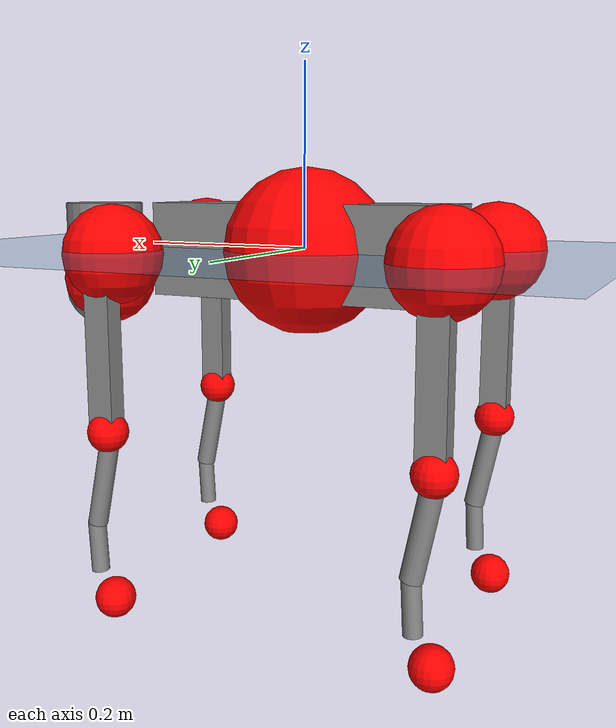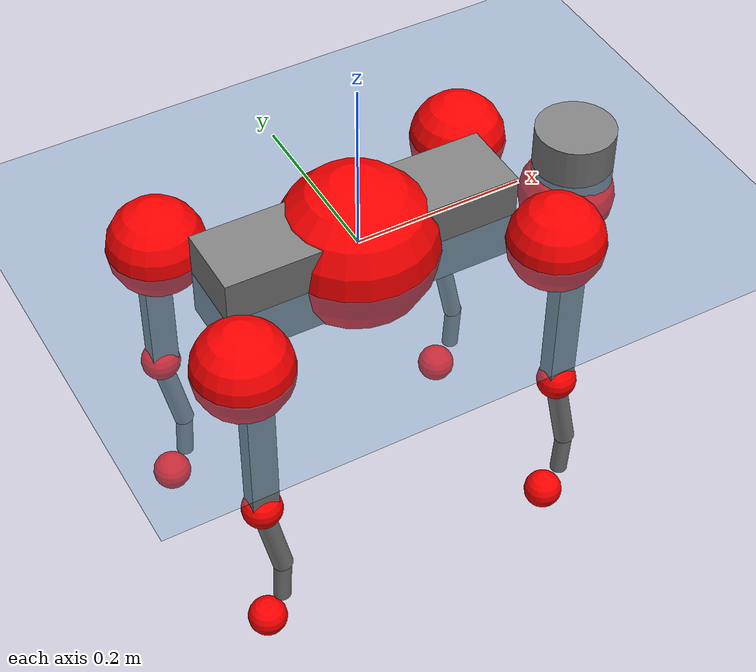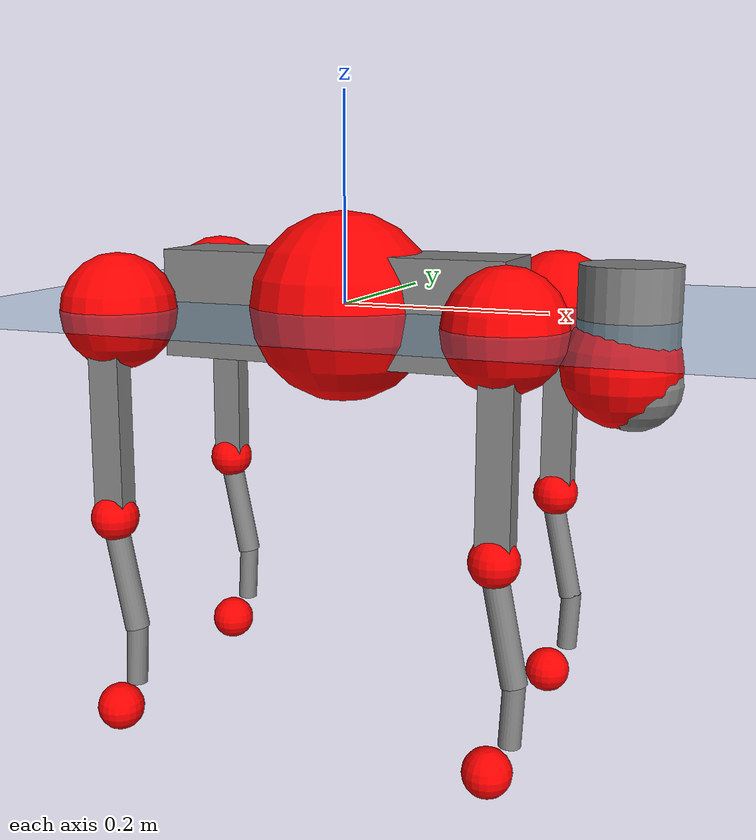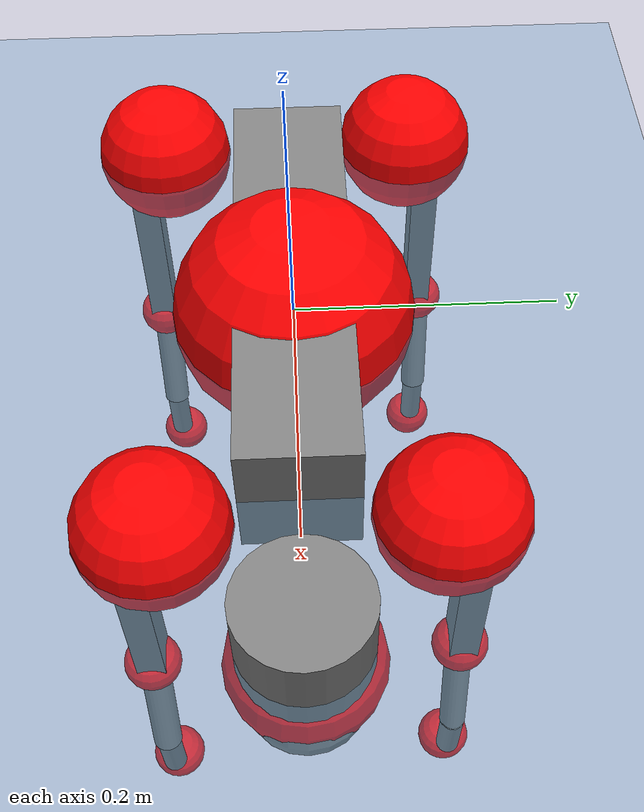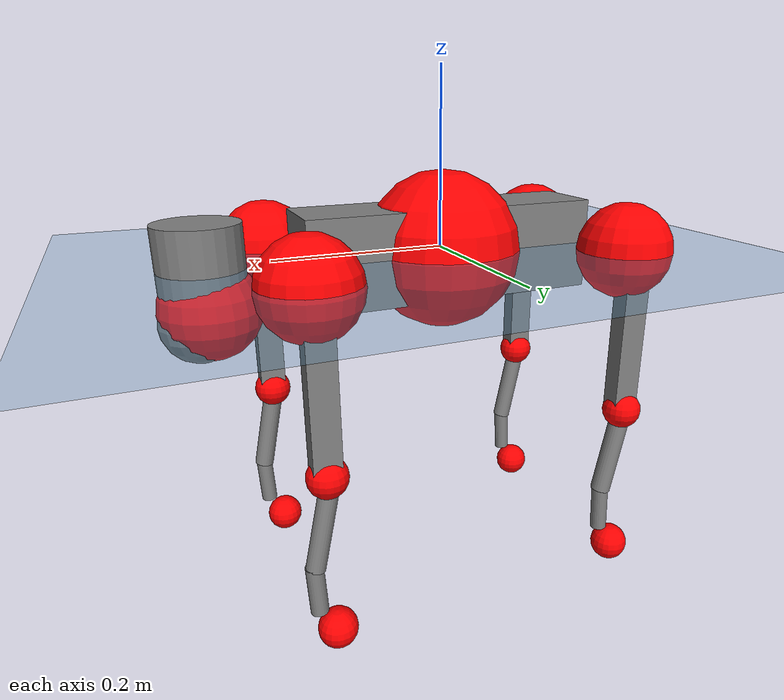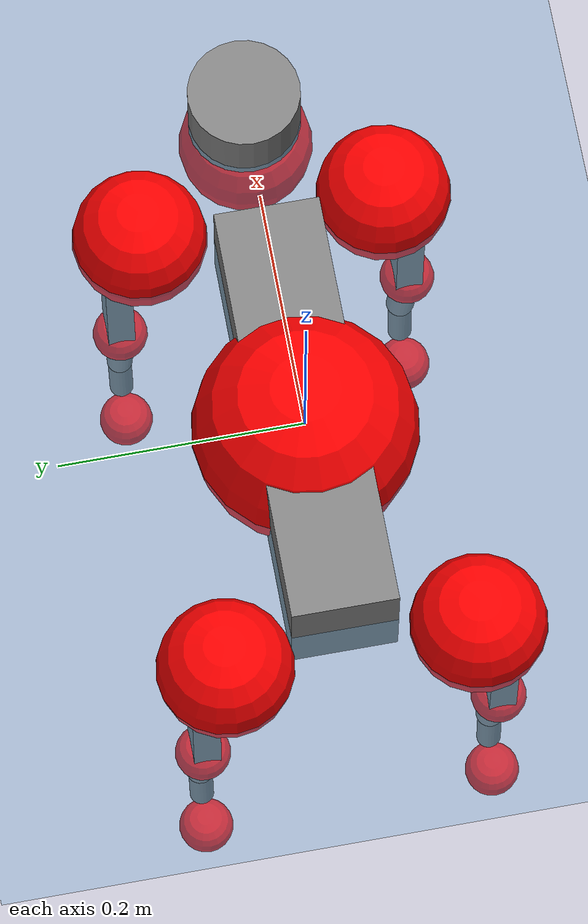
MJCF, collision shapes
<mujoco model="go2">
  <compiler angle="radian" assetdir="assets" balanceinertia="true" inertiafromgeom="false"/>

  <option timestep="0.005" density="1.2" viscosity="2e-05"/>

  <size nkey="1"/>

  <visual>
    <quality shadowsize="8192"/>
    <map shadowclip="0.5"/>
  </visual>

  <default>
    <default class="/">
      <geom contype="0" conaffinity="0" group="1" solref="-1000 -80"/>
      <site size="0.01 0.005 0.005" group="5"/>
      <general forcelimited="true" biastype="affine" gainprm="20" biasprm="0 -20 -0.5"/>
      <default class="go2">
        <joint armature="0.01" damping="0.01" frictionloss="0.2"/>
        <geom condim="1" margin="0.001"/>
        <default class="visual">
          <geom type="mesh" group="2"/>
        </default>
        <default class="collision">
          <geom group="3"/>
          <default class="foot">
            <geom size="0.022 0 0" condim="6" priority="1" friction="0.8 0.02 0.01" solimp="0.015 1 0.022"/>
          </default>
        </default>
        <default class="reward_collision_sphere">
          <geom group="5" rgba="1 0 0 1"/>
        </default>
      </default>
    </default>
  </default>

  <asset>
    <texture type="skybox" colorspace="auto" name="//unnamed_texture_0" builtin="gradient" rgb1="0.95 0.95 0.95" rgb2="0.95 0.95 0.95" width="100" height="600"/>
    <texture type="2d" colorspace="auto" name="texplane" builtin="checker" rgb1="0.345 0.575 0.748" rgb2="0.345 0.575 0.748" markrgb="1 1 1" width="512" height="512"/>
    <material name="MatPlane" class="/" texture="texplane" texuniform="true" texrepeat="2 2" specular="0.9"/>
    <material name="metal" class="/" rgba="0.9 0.95 0.95 1"/>
    <material name="black" class="/" rgba="0 0 0 1"/>
    <material name="white" class="/"/>
    <material name="gray" class="/" rgba="0.671705 0.692426 0.77427 1"/>
    <mesh name="base_0" class="/" file="base_0.obj"/>
    <mesh name="base_1" class="/" file="base_1.obj"/>
    <mesh name="base_2" class="/" file="base_2.obj"/>
    <mesh name="base_3" class="/" file="base_3.obj"/>
    <mesh name="base_4" class="/" file="base_4.obj"/>
    <mesh name="hip_0" class="/" file="hip_0.obj"/>
    <mesh name="hip_1" class="/" file="hip_1.obj"/>
    <mesh name="thigh_0" class="/" file="thigh_0.obj"/>
    <mesh name="thigh_1" class="/" file="thigh_1.obj"/>
    <mesh name="thigh_mirror_0" class="/" file="thigh_mirror_0.obj"/>
    <mesh name="thigh_mirror_1" class="/" file="thigh_mirror_1.obj"/>
    <mesh name="calf_0" class="/" file="calf_0.obj"/>
    <mesh name="calf_1" class="/" file="calf_1.obj"/>
    <mesh name="calf_mirror_0" class="/" file="calf_mirror_0.obj"/>
    <mesh name="calf_mirror_1" class="/" file="calf_mirror_1.obj"/>
    <mesh name="foot" class="/" file="foot.obj"/>
  </asset>

  <worldbody>
    <geom name="floor" class="/" size="100 100 0.125" type="plane" group="0" material="MatPlane"/>
    <light name="toplight_shadow" class="/" pos="0 0 5" dir="0.0990148 0.0990148 -0.990148" type="directional" ambient="0.04 0.04 0.04" diffuse="0.55 0.55 0.55" specular="0.12 0.12 0.12"/>
    <light name="toplight_fill" class="/" pos="0 0 5" dir="0.0990148 0.0990148 -0.990148" type="directional" castshadow="false" ambient="0.04 0.04 0.04" diffuse="0.3 0.3 0.3" specular="0.08 0.08 0.08"/>
    <body name="trunk" childclass="go2" pos="-0.00205676 0.000444808 -0.00277687" quat="0.999999 -2.20584e-05 0.00119587 -0.000264911">
      <inertial pos="0.0174081 0.00235724 -0.00576124" quat="-0.000386202 0.715986 -0.00742271 0.698075" mass="5.42604" diaginertia="0.0894193 0.0501345 0.0160266"/>
      <joint name="//unnamed_joint_0" type="free" armature="0" damping="0" frictionloss="0"/>
      <geom name="//unnamed_geom_1" class="visual" material="black" mesh="base_0"/>
      <geom name="//unnamed_geom_2" class="visual" material="black" mesh="base_1"/>
      <geom name="//unnamed_geom_3" class="visual" material="black" mesh="base_2"/>
      <geom name="//unnamed_geom_4" class="visual" material="white" mesh="base_3"/>
      <geom name="//unnamed_geom_5" class="visual" material="gray" mesh="base_4"/>
      <geom name="trunk_1" class="collision" size="0.172838 0.0429569 0.0523752" type="box"/>
      <geom name="trunk_2" class="collision" size="0.0459432 0.0413489" pos="0.274459 0 0.00918727" type="cylinder"/>
      <geom name="trunk_3" class="collision" size="0.0431866" pos="0.282163 0 -0.0551236"/>
      <geom name="//unnamed_geom_9" class="reward_collision_sphere" size="0.0918864"/>
      <geom name="//unnamed_geom_10" class="reward_collision_sphere" size="0.0551318" pos="0.269644 0 -0.0413427"/>
      <site name="imu" pos="-0.0111425 0.00650893 0.0259437" size="0.00918864"/>
      <camera name="track" pos="0 -1.7497 0" quat="0.707107 0.707107 0 0" mode="trackcom"/>
      <camera name="ego_camera" pos="0.30046 0 0.0413427" quat="-0.5 -0.5 0.5 0.5"/>
      <body name="FL_hip" pos="0.186004 0.0405739 -0.00249759" quat="1 -0.000187249 0.000293415 8.03299e-05">
        <inertial pos="-0.0079756 0.00128637 -0.00210866" quat="0.499467 0.49092 0.509699 0.499737" mass="0.525953" diaginertia="0.000730498 0.000306419 0.000325042"/>
        <joint name="FL_hip_joint" pos="0 0 0" axis="0.999978 0.00526836 0.00390573" range="-1.04333 1.03957" armature="0.0100529" damping="0.0144918" frictionloss="0.178407"/>
        <geom name="//unnamed_geom_11" class="visual" material="metal" mesh="hip_0"/>
        <geom name="//unnamed_geom_12" class="visual" material="gray" mesh="hip_1"/>
        <geom name="//unnamed_geom_13" class="collision" size="0.0422677 0.0183773" pos="0 0.0699881 0" quat="0.707107 0.707107 0 0" type="cylinder"/>
        <geom name="//unnamed_geom_14" class="reward_collision_sphere" size="0.0551318" pos="0 0.0612396 0"/>
        <body name="FL_thigh" pos="0.000921835 0.0826439 -0.00210958" quat="1 0.000499633 8.17899e-05 0.000284742">
          <inertial pos="-0.00314582 -0.019476 -0.0287181" quat="0.835203 0.0870735 -0.019149 0.542668" mass="0.873031" diaginertia="0.0049249 0.00285886 0.000576844"/>
          <joint name="FL_thigh_joint" pos="0 0 0" axis="0.0143768 0.999757 0.0167066" stiffness="0.0145381" range="-1.55985 3.46924" armature="0.00798061" damping="0.015924" frictionloss="0.182602"/>
          <geom name="//unnamed_geom_15" class="visual" material="metal" mesh="thigh_0"/>
          <geom name="//unnamed_geom_16" class="visual" material="gray" mesh="thigh_1"/>
          <geom name="//unnamed_geom_17" class="collision" size="0.097859 0.0112561 0.0156207" pos="0 0 -0.0978444" quat="0.707107 0 0.707107 0" type="box"/>
          <body name="FL_calf" pos="-0.00129648 -0.00042126 -0.193799" quat="1 0.000227388 -0.000183797 0.000155024">
            <inertial pos="0.00372399 -0.00318215 -0.127566" quat="0.709464 0.0016555 -0.0027274 0.704734" mass="0.185764" diaginertia="0.00125484 0.000727277 3.4635e-05"/>
            <joint name="FL_calf_joint" pos="0 0 0" axis="0.000388855 0.999996 0.00275202" stiffness="0.0121229" range="-2.67815 -0.851983" armature="0.00908535" damping="0.00823919" frictionloss="0.182695"/>
            <geom name="//unnamed_geom_18" class="visual" material="gray" mesh="calf_0"/>
            <geom name="//unnamed_geom_19" class="visual" material="black" mesh="calf_1"/>
            <geom name="FL_calf0" class="collision" size="0.0110264 0.0551318" pos="0.0077041 0 -0.0551236" quat="0.994493 0 -0.104807 0" type="cylinder"/>
            <geom name="//unnamed_geom_21" class="collision" size="0.0101075 0.0298631" pos="0.0192603 0 -0.135972" quat="0.999688 0 0.0249974 0" type="cylinder"/>
            <geom name="//unnamed_geom_22" class="visual" pos="0 0 -0.195689" quat="1 0 0 0" material="black" mesh="foot"/>
            <geom name="FL_foot" class="foot" size="0.0213021" pos="-0.00192603 0 -0.195689"/>
            <geom name="//unnamed_geom_24" class="reward_collision_sphere" size="0.0229716"/>
            <geom name="//unnamed_geom_25" class="reward_collision_sphere" size="0.0229716" pos="-0.00192603 0 -0.195689"/>
            <site name="FL_foot" class="foot" pos="-0.00192603 0 -0.195689" size="0.00918864"/>
          </body>
        </body>
      </body>
      <body name="FR_hip" pos="0.189056 -0.0377565 -0.000111733" quat="1 -0.000132318 -4.68253e-06 0.000502538">
        <inertial pos="-0.00708281 -0.0038354 -0.0014023" quat="0.498559 0.505096 0.499209 0.497099" mass="0.521403" diaginertia="0.000704884 0.000314982 0.000317341"/>
        <joint name="FR_hip_joint" pos="0 0 0" axis="1 -0.000255479 -0.000375297" stiffness="0.00229612" range="-1.00969 1.03345" armature="0.00904154" damping="0.0137466" frictionloss="0.206554"/>
        <geom name="//unnamed_geom_26" class="visual" pos="0 -3.82221e-10 -1.63943e-08" quat="4.63268e-05 1 0 0" material="metal" mesh="hip_0"/>
        <geom name="//unnamed_geom_27" class="visual" pos="0 -6.19626e-10 4.05493e-08" quat="4.63268e-05 1 0 0" material="gray" mesh="hip_1"/>
        <geom name="//unnamed_geom_28" class="collision" size="0.0422677 0.0183773" pos="0 -0.0699881 0" quat="0.707107 0.707107 0 0" type="cylinder"/>
        <geom name="//unnamed_geom_29" class="reward_collision_sphere" size="0.0551318" pos="0 -0.0612396 0"/>
        <body name="FR_thigh" pos="0.00272315 -0.0837507 -0.000923241" quat="0.999999 -8.44532e-06 -0.000633552 0.00104689">
          <inertial pos="-0.00306729 0.0194223 -0.0296823" quat="0.557818 -0.0202937 0.0857372 0.825274" mass="0.918047" diaginertia="0.00474998 0.00298923 0.000574126"/>
          <joint name="FR_thigh_joint" pos="0 0 0" axis="0.00388361 -0.999991 0.00178737" range="-3.48757 1.60097" armature="0.0085827" damping="0.0110726" frictionloss="0.198498"/>
          <geom name="//unnamed_geom_30" class="visual" material="metal" mesh="thigh_mirror_0"/>
          <geom name="//unnamed_geom_31" class="visual" material="gray" mesh="thigh_mirror_1"/>
          <geom name="//unnamed_geom_32" class="collision" size="0.097859 0.0112561 0.0156207" pos="0 0 -0.0978444" quat="0.707107 0 0.707107 0" type="box"/>
          <body name="FR_calf" pos="-0.000386119 -0.00107988 -0.194658" quat="1 -9.99152e-05 0.000122842 -5.34064e-05">
            <inertial pos="0.00734319 -0.00012299 -0.131476" quat="0.705904 -0.0113814 -0.00968523 0.70815" mass="0.18699" diaginertia="0.00130161 0.000753814 3.53079e-05"/>
            <joint name="FR_calf_joint" pos="0 0 0" axis="-0.00496434 -0.999896 -0.0135673" range="0.822082 2.66375" armature="0.0100434" damping="0.0128417" frictionloss="0.182358"/>
            <geom name="//unnamed_geom_33" class="visual" material="gray" mesh="calf_mirror_0"/>
            <geom name="//unnamed_geom_34" class="visual" material="black" mesh="calf_mirror_1"/>
            <geom name="FR_calf0" class="collision" size="0.0119452 0.0551318" pos="0.00963013 0 -0.0551236" quat="0.995004 0 -0.0998334 0" type="cylinder"/>
            <geom name="//unnamed_geom_36" class="collision" size="0.0101075 0.0298631" pos="0.0192603 0 -0.135972" quat="0.999688 0 0.0249974 0" type="cylinder"/>
            <geom name="//unnamed_geom_37" class="visual" pos="0 0 -0.195689" quat="1 0 0 0" material="black" mesh="foot"/>
            <geom name="FR_foot" class="foot" size="0.0190101" pos="-0.00192603 0 -0.195689"/>
            <geom name="//unnamed_geom_39" class="reward_collision_sphere" size="0.0229716"/>
            <geom name="//unnamed_geom_40" class="reward_collision_sphere" size="0.0229716" pos="-0.00192603 0 -0.195689"/>
            <site name="FR_foot" class="foot" pos="-0.00192603 0 -0.195689" size="0.00918864"/>
          </body>
        </body>
      </body>
      <body name="RL_hip" pos="-0.187739 0.0373098 0.00101754" quat="1 4.28857e-06 0.000137106 -0.0003092">
        <inertial pos="0.00475608 0.00215038 0.000671433" quat="0.506531 0.498355 0.496735 0.49832" mass="0.527367" diaginertia="0.000739255 0.000296407 0.00031157"/>
        <joint name="RL_hip_joint" pos="0 0 0" axis="-0.999999 0.00129044 -0.000816744" stiffness="0.00995774" range="-1.06592 1.05564" armature="0.00922948" damping="0" frictionloss="0.187477"/>
        <geom name="//unnamed_geom_41" class="visual" pos="-3.85801e-10 0 -7.56258e-08" quat="4.63268e-05 0 1 0" material="metal" mesh="hip_0"/>
        <geom name="//unnamed_geom_42" class="visual" pos="-6.25429e-10 0 -6.70693e-08" quat="4.63268e-05 0 1 0" material="gray" mesh="hip_1"/>
        <geom name="//unnamed_geom_43" class="collision" size="0.0422677 0.0183773" pos="0 0.0699881 0" quat="0.707107 0.707107 0 0" type="cylinder"/>
        <geom name="//unnamed_geom_44" class="reward_collision_sphere" size="0.0551318" pos="0 0.0612396 0"/>
        <body name="RL_thigh" pos="-0.000934901 0.0803122 0.00218731" quat="1 1.01759e-06 4.1506e-05 7.55692e-06">
          <inertial pos="-0.00427116 -0.0191731 -0.0288445" quat="0.830455 0.0863554 -0.0203357 0.549977" mass="0.912509" diaginertia="0.00510565 0.0030588 0.000592929"/>
          <joint name="RL_thigh_joint" pos="0 0 0" axis="0.00584445 0.999982 0.001422" range="-0.531081 4.50996" armature="0.0103578" damping="0.00312802" frictionloss="0.189807"/>
          <geom name="//unnamed_geom_45" class="visual" material="metal" mesh="thigh_0"/>
          <geom name="//unnamed_geom_46" class="visual" material="gray" mesh="thigh_1"/>
          <geom name="//unnamed_geom_47" class="collision" size="0.097859 0.0112561 0.0156207" pos="0 0 -0.0978444" quat="0.707107 0 0.707107 0" type="box"/>
          <body name="RL_calf" pos="-0.00196314 0.00192008 -0.197896" quat="1 0.000130681 -7.3093e-05 -0.000498499">
            <inertial pos="0.0085991 -0.00314559 -0.127644" quat="0.711032 0.00686394 -0.00927762 0.703065" mass="0.183358" diaginertia="0.00123001 0.000777333 3.37647e-05"/>
            <joint name="RL_calf_joint" pos="0 0 0" axis="-0.00388196 0.999974 0.00599688" stiffness="0.00863096" range="-2.67689 -0.835082" armature="0.00927165" damping="0" frictionloss="0.207822"/>
            <geom name="//unnamed_geom_48" class="visual" material="gray" mesh="calf_0"/>
            <geom name="//unnamed_geom_49" class="visual" material="black" mesh="calf_1"/>
            <geom name="RL_calf0" class="collision" size="0.0119452 0.0551318" pos="0.00963013 0 -0.0551236" quat="0.995004 0 -0.0998334 0" type="cylinder"/>
            <geom name="//unnamed_geom_51" class="collision" size="0.0101075 0.0298631" pos="0.0192603 0 -0.135972" quat="0.999688 0 0.0249974 0" type="cylinder"/>
            <geom name="//unnamed_geom_52" class="visual" pos="0 0 -0.195689" quat="1 0 0 0" material="black" mesh="foot"/>
            <geom name="RL_foot" class="foot" size="0.021173" pos="-0.00192603 0 -0.195689"/>
            <geom name="//unnamed_geom_54" class="reward_collision_sphere" size="0.0229716"/>
            <geom name="//unnamed_geom_55" class="reward_collision_sphere" size="0.0229716" pos="-0.00192603 0 -0.195689"/>
            <site name="RL_foot" class="foot" pos="-0.00192603 0 -0.195689" size="0.00918864"/>
          </body>
        </body>
      </body>
      <body name="RR_hip" pos="-0.185974 -0.0434322 -0.00158875" quat="0.999999 -0.0011999 -0.000784298 0.00051291">
        <inertial pos="0.0043457 -0.000904338 -0.00224945" quat="0.499741 0.496489 0.498215 0.50551" mass="0.549799" diaginertia="0.000731735 0.000303979 0.000317059"/>
        <joint name="RR_hip_joint" pos="0 0 0" axis="-0.999917 -0.0126184 -0.0025675" range="-0.993891 1.02024" armature="0.00800097" damping="0.0103266" frictionloss="0.207319"/>
        <geom name="//unnamed_geom_56" class="visual" pos="3.82748e-10 -3.82221e-10 -5.92316e-08" quat="2.14617e-09 4.63268e-05 4.63268e-05 -1" material="metal" mesh="hip_0"/>
        <geom name="//unnamed_geom_57" class="visual" pos="6.32978e-10 -6.19626e-10 -1.07619e-07" quat="2.14617e-09 4.63268e-05 4.63268e-05 -1" material="gray" mesh="hip_1"/>
        <geom name="//unnamed_geom_58" class="collision" size="0.0422677 0.0183773" pos="0 -0.0699881 0" quat="0.707107 0.707107 0 0" type="cylinder"/>
        <geom name="//unnamed_geom_59" class="reward_collision_sphere" size="0.0551318" pos="0 -0.0612396 0"/>
        <body name="RR_thigh" pos="0.00143729 -0.0836748 -0.000465365" quat="1 9.65981e-05 7.2837e-05 -2.78494e-05">
          <inertial pos="-0.00593575 0.0216282 -0.0301637" quat="0.551745 -0.0218968 0.0845012 0.829432" mass="0.865316" diaginertia="0.00501979 0.00295794 0.000575816"/>
          <joint name="RR_thigh_joint" pos="0 0 0" axis="0.00019511 -0.999999 0.00147751" stiffness="0.00392873" range="-4.53473 0.532683" armature="0.00884843" damping="0.0177675" frictionloss="0.172736"/>
          <geom name="//unnamed_geom_60" class="visual" material="metal" mesh="thigh_mirror_0"/>
          <geom name="//unnamed_geom_61" class="visual" material="gray" mesh="thigh_mirror_1"/>
          <geom name="//unnamed_geom_62" class="collision" size="0.097859 0.0112561 0.0156207" pos="0 0 -0.0978444" quat="0.707107 0 0.707107 0" type="box"/>
          <body name="RR_calf" pos="-0.000294266 4.21352e-05 -0.195892" quat="1 4.48877e-05 9.61027e-05 -0.000238835">
            <inertial pos="0.00847723 0.000790423 -0.130614" quat="0.703616 -0.00222199 0.00346074 0.710568" mass="0.177767" diaginertia="0.0011773 0.000732906 3.34501e-05"/>
            <joint name="RR_calf_joint" pos="0 0 0" axis="0.00190412 -0.999997 -0.00175613" range="0.848568 2.77639" armature="0.00804047" damping="0.0203232" frictionloss="0.191293"/>
            <geom name="//unnamed_geom_63" class="visual" material="gray" mesh="calf_mirror_0"/>
            <geom name="//unnamed_geom_64" class="visual" material="black" mesh="calf_mirror_1"/>
            <geom name="RR_calf0" class="collision" size="0.0119452 0.0551318" pos="0.00963013 0 -0.0551236" quat="0.995004 0 -0.0998334 0" type="cylinder"/>
            <geom name="//unnamed_geom_66" class="collision" size="0.0101075 0.0298631" pos="0.0192603 0 -0.135972" quat="0.999688 0 0.0249974 0" type="cylinder"/>
            <geom name="//unnamed_geom_67" class="visual" pos="0 0 -0.195689" quat="1 0 0 0" material="black" mesh="foot"/>
            <geom name="RR_foot" class="foot" size="0.0167853" pos="-0.00192603 0 -0.195689"/>
            <geom name="//unnamed_geom_69" class="reward_collision_sphere" size="0.0229716"/>
            <geom name="//unnamed_geom_70" class="reward_collision_sphere" size="0.0229716" pos="-0.00192603 0 -0.195689"/>
            <site name="RR_foot" class="foot" pos="-0.00192603 0 -0.195689" size="0.00918864"/>
          </body>
        </body>
      </body>
    </body>
  </worldbody>

  <contact>
    <pair class="/" geom1="floor" geom2="FL_foot" name="//unnamed_contact_0"/>
    <pair class="/" geom1="floor" geom2="FR_foot" name="//unnamed_contact_1"/>
    <pair class="/" geom1="floor" geom2="RL_foot" name="//unnamed_contact_2"/>
    <pair class="/" geom1="floor" geom2="RR_foot" name="//unnamed_contact_3"/>
  </contact>

  <actuator>
    <general name="FL_hip" class="/" joint="FL_hip_joint" forcerange="-22.3131 22.3131" gainprm="17.4728" biasprm="0 -17.4728 -0.471497"/>
    <general name="FL_thigh" class="/" joint="FL_thigh_joint" forcerange="-22.5411 22.5411" gainprm="17.4728" biasprm="0 -17.4728 -0.471497"/>
    <general name="FL_calf" class="/" joint="FL_calf_joint" forcerange="-41.2962 41.2962" gainprm="17.4728" biasprm="0 -17.4728 -0.471497"/>
    <general name="FR_hip" class="/" joint="FR_hip_joint" forcerange="-21.4838 21.4838" gainprm="17.4728" biasprm="0 -17.4728 -0.471497"/>
    <general name="FR_thigh" class="/" joint="FR_thigh_joint" forcerange="-23.8087 23.8087" gainprm="17.4728" biasprm="0 -17.4728 -0.471497"/>
    <general name="FR_calf" class="/" joint="FR_calf_joint" forcerange="-38.2959 38.2959" gainprm="17.4728" biasprm="0 -17.4728 -0.471497"/>
    <general name="RL_hip" class="/" joint="RL_hip_joint" forcerange="-21.7244 21.7244" gainprm="17.4728" biasprm="0 -17.4728 -0.471497"/>
    <general name="RL_thigh" class="/" joint="RL_thigh_joint" forcerange="-24.0731 24.0731" gainprm="17.4728" biasprm="0 -17.4728 -0.471497"/>
    <general name="RL_calf" class="/" joint="RL_calf_joint" forcerange="-40.1209 40.1209" gainprm="17.4728" biasprm="0 -17.4728 -0.471497"/>
    <general name="RR_hip" class="/" joint="RR_hip_joint" forcerange="-22.5876 22.5876" gainprm="17.4728" biasprm="0 -17.4728 -0.471497"/>
    <general name="RR_thigh" class="/" joint="RR_thigh_joint" forcerange="-22.6669 22.6669" gainprm="17.4728" biasprm="0 -17.4728 -0.471497"/>
    <general name="RR_calf" class="/" joint="RR_calf_joint" forcerange="-39.4294 39.4294" gainprm="17.4728" biasprm="0 -17.4728 -0.471497"/>
  </actuator>

  <sensor>
    <gyro site="imu" name="imu_angular_velocity"/>
    <velocimeter site="imu" name="imu_linear_velocity"/>
    <framelinvel objtype="site" objname="FL_foot" name="FL_foot_global_linear_velocity"/>
    <framelinvel objtype="site" objname="FR_foot" name="FR_foot_global_linear_velocity"/>
    <framelinvel objtype="site" objname="RL_foot" name="RL_foot_global_linear_velocity"/>
    <framelinvel objtype="site" objname="RR_foot" name="RR_foot_global_linear_velocity"/>
  </sensor>

  <keyframe>
    <key name="home" qpos="0 0 0.325 1 0 0 0 0.1 0.8 -1.5 -0.1 -0.8 1.5 -0.1 0.8 -1.5 0.1 -0.8 1.5"/>
  </keyframe>
</mujoco>
